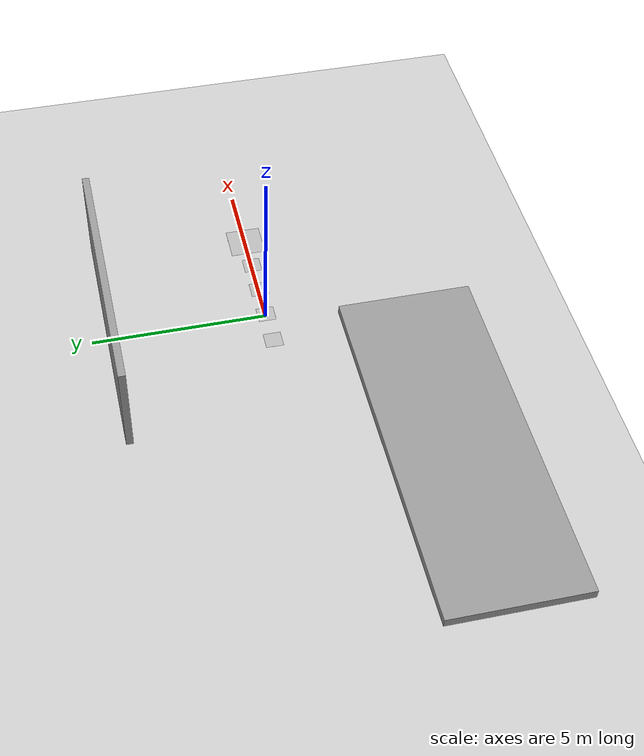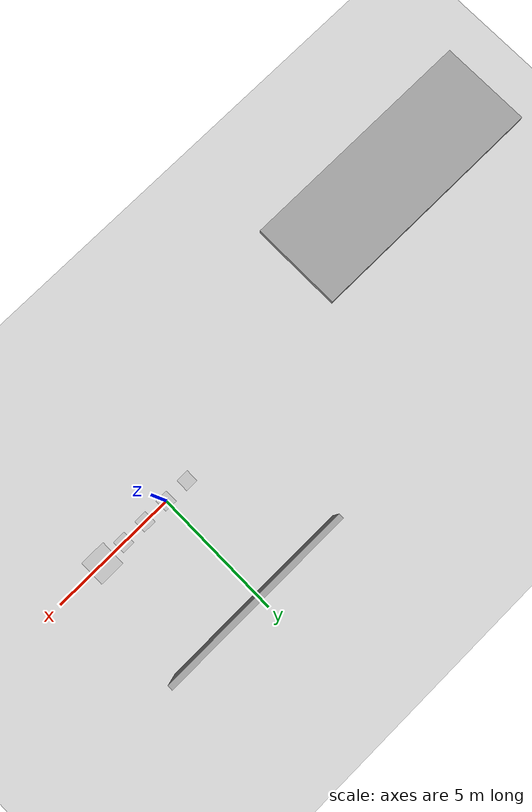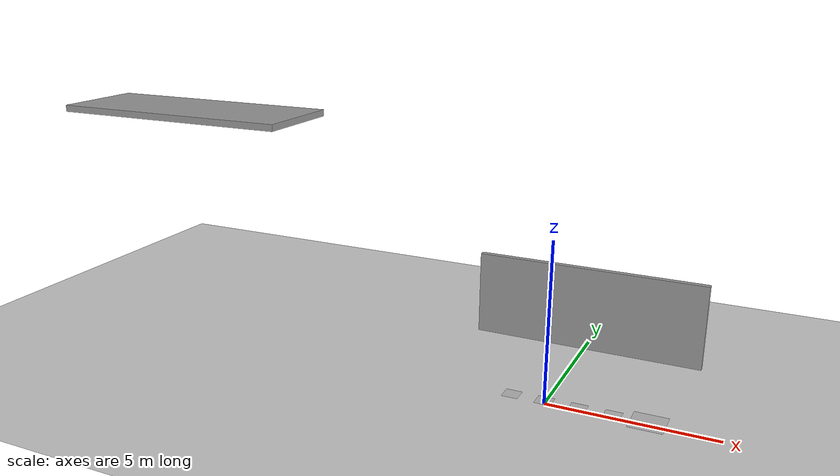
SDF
<sdf version="1.6">
 <world name="default">
  <physics name="default_physics" default="0" type="ode">
   <ode>
    <solver>
     <type>quick</type>
     <iters>100</iters>
     <sor>1</sor>
     <use_dynamic_moi_rescaling>0</use_dynamic_moi_rescaling>
    </solver>
    <constraints>
     <cfm>0</cfm>
     <erp>0.9</erp>
     <contact_max_correcting_vel>0.1</contact_max_correcting_vel>
     <contact_surface_layer>0</contact_surface_layer>
    </constraints>
   </ode>
   <real_time_update_rate>1000</real_time_update_rate>
   <max_step_size>0.001</max_step_size>
   <real_time_factor>1</real_time_factor>
  </physics>
  <scene>
   <sky><clouds><speed>12</speed></clouds></sky>
   <ambient>0.4 0.4 0.4 1</ambient>
   <background>0.25 0.25 0.25 1</background>
   <shadows>0</shadows>
  </scene>
  <model name="ground_plane">
   <static>1</static>
   <link name="link">
    <collision name="collision">
     <geometry><plane><normal>0 0 1</normal><size>1000 1000</size></plane></geometry>
     <surface><friction><ode><mu>1</mu><mu2>1</mu2></ode></friction></surface>
    </collision>
    <visual name="runway">
     <pose>0 0 0.005 0 -0 0</pose>
     <cast_shadows>0</cast_shadows>
     <geometry><plane><normal>0 0 1</normal><size>1000 45</size></plane></geometry>
     <material>
      <script><uri>file://media/materials/scripts/gazebo.material</uri><name>Gazebo/Runway</name></script>
     </material>
    </visual>
    <visual name="grass">
     <pose>0 0 -0.1 0 -0 0</pose>
     <cast_shadows>0</cast_shadows>
     <geometry><plane><normal>0 0 1</normal><size>1000 1000</size></plane></geometry>
     <material>
      <script><uri>file://media/materials/scripts/gazebo.material</uri><name>Gazebo/Grass</name></script>
     </material>
    </visual>
   </link>
  </model>
  <light name="sun" type="directional">
   <pose>0 0 10 0 -0 0</pose>
   <diffuse>0.8 0.8 0.8 1</diffuse>
   <specular>0.2 0.2 0.2 1</specular>
   <attenuation>
    <range>1000</range>
    <constant>0.9</constant>
    <linear>0.01</linear>
    <quadratic>0.001</quadratic>
   </attenuation>
   <direction>-0.5 0.1 -0.9</direction>
  </light>
  <wind><linear_velocity>0 0 0</linear_velocity></wind>
  <plugin name="wind" filename="libWindPlugin.so">
   <horizontal>
    <magnitude>
     <time_for_rise>10</time_for_rise>
     <sin><amplitude_percent>0.05</amplitude_percent><period>60</period></sin>
     <noise type="gaussian"><mean>0</mean><stddev>0.0002</stddev></noise>
    </magnitude>
    <direction>
     <time_for_rise>30</time_for_rise>
     <sin><amplitude>5</amplitude><period>20</period></sin>
     <noise type="gaussian"><mean>0</mean><stddev>0.03</stddev></noise>
    </direction>
   </horizontal>
   <vertical><noise type="gaussian"><mean>0</mean><stddev>0.03</stddev></noise></vertical>
  </plugin>
  <gravity>0 0 -9.8</gravity>
  <magnetic_field>6e-06 2.3e-05 -4.2e-05</magnetic_field>
  <atmosphere type="adiabatic"/>
  <audio><device>default</device></audio>
  <spherical_coordinates>
   <surface_model>EARTH_WGS84</surface_model>
   <latitude_deg>0</latitude_deg>
   <longitude_deg>0</longitude_deg>
   <elevation>0</elevation>
   <heading_deg>0</heading_deg>
  </spherical_coordinates>
  <model name="kare_sekilli_platform">
   <static>1</static>
   <link name="link">
    <collision name="collision">
     <geometry><plane><normal>0 0 1</normal><size>0.5 0.5</size></plane></geometry>
     <surface>
      <contact><collide_bitmask>65535</collide_bitmask></contact>
      <friction><ode><mu>100</mu><mu2>50</mu2></ode></friction>
     </surface>
    </collision>
    <visual name="visual">
     <cast_shadows>0</cast_shadows>
     <geometry><plane><normal>0 0 1</normal><size>0.5 0.5</size></plane></geometry>
     <material>
      <script>
       <uri>model://kare_sekilli_platform/materials/scripts/my_ground_plane.material</uri>
       <uri>model://kare_sekilli_platform/materials/textures/kare.png</uri>
       <name>Kare_Sekilli_Platform/Image</name>
      </script>
     </material>
    </visual>
   </link>
   <pose>0 0 0.1 0 -0 0</pose>
  </model>
  <model name="daire_sekilli_platform">
   <static>1</static>
   <link name="link">
    <collision name="collision">
     <geometry><plane><normal>0 0 1</normal><size>0.5 0.5</size></plane></geometry>
     <surface>
      <contact><collide_bitmask>65535</collide_bitmask></contact>
      <friction><ode><mu>100</mu><mu2>50</mu2></ode></friction>
     </surface>
    </collision>
    <visual name="visual">
     <cast_shadows>0</cast_shadows>
     <geometry><plane><normal>0 0 1</normal><size>0.5 0.5</size></plane></geometry>
     <material>
      <script>
       <uri>model://daire_sekilli_platform/materials/scripts/my_ground_plane.material</uri>
       <uri>model://daire_sekilli_platform/materials/textures/daire.png</uri>
       <name>Daire_Sekilli_Platform/Image</name>
      </script>
     </material>
    </visual>
   </link>
   <pose>-1 0 0.1 0 -0 0</pose>
  </model>
  <model name="ucgen_sekilli_platform">
   <static>1</static>
   <link name="link">
    <collision name="collision">
     <geometry><plane><normal>0 0 1</normal><size>0.5 0.5</size></plane></geometry>
     <surface>
      <contact><collide_bitmask>65535</collide_bitmask></contact>
      <friction><ode><mu>100</mu><mu2>50</mu2></ode></friction>
     </surface>
    </collision>
    <visual name="visual">
     <cast_shadows>0</cast_shadows>
     <geometry><plane><normal>0 0 1</normal><size>0.5 0.5</size></plane></geometry>
     <material>
      <script>
       <uri>model://ucgen_sekilli_platform/materials/scripts/my_ground_plane.material</uri>
       <uri>model://ucgen_sekilli_platform/materials/textures/ucgen.png</uri>
       <name>Ucgen_Sekilli_Platform/Image</name>
      </script>
     </material>
    </visual>
   </link>
   <pose>2 0 0.1 0 -0 0</pose>
  </model>
  <model name="dikdortgen_sekilli_platform">
   <static>1</static>
   <link name="link">
    <collision name="collision">
     <geometry><plane><normal>0 0 1</normal><size>0.5 0.5</size></plane></geometry>
     <surface>
      <contact><collide_bitmask>65535</collide_bitmask></contact>
      <friction><ode><mu>100</mu><mu2>50</mu2></ode></friction>
     </surface>
    </collision>
    <visual name="visual">
     <cast_shadows>0</cast_shadows>
     <geometry><plane><normal>0 0 1</normal><size>0.5 0.5</size></plane></geometry>
     <material>
      <script>
       <uri>model://dikdortgen_sekilli_platform/materials/scripts/my_ground_plane.material</uri>
       <uri>model://dikdortgen_sekilli_platform/materials/textures/dikdortgen.png</uri>
       <name>Dikdortgen_Sekilli_Platform/Image</name>
      </script>
     </material>
    </visual>
   </link>
   <pose>1 0 0.1 0 -0 0</pose>
  </model>
  <model name="gedik_platform">
   <static>1</static>
   <link name="link">
    <collision name="collision">
     <geometry><plane><normal>0 0 1</normal><size>1 1</size></plane></geometry>
     <surface>
      <contact><collide_bitmask>65535</collide_bitmask></contact>
      <friction><ode><mu>100</mu><mu2>50</mu2></ode></friction>
     </surface>
    </collision>
    <visual name="visual">
     <cast_shadows>0</cast_shadows>
     <geometry><plane><normal>0 0 1</normal><size>1 1</size></plane></geometry>
     <material>
      <script>
       <uri>model://gedik_platform/materials/scripts/my_ground_plane.material</uri>
       <uri>model://gedik_platform/materials/textures/gedik-logo.png</uri>
       <name>Gedik_Platform/Image</name>
      </script>
     </material>
    </visual>
   </link>
   <pose>3 0 0.1 0 -0 0</pose>
  </model>
  <model name="grey_wall">
   <static>1</static>
   <link name="link">
    <pose>0 0 1.4 0 -0 0</pose>
    <collision name="collision"><geometry><box><size>7.5 0.2 2.8</size></box></geometry></collision>
    <visual name="visual">
     <cast_shadows>0</cast_shadows>
     <geometry><box><size>7.5 0.2 2.8</size></box></geometry>
     <material>
      <script>
       <uri>model://grey_wall/materials/scripts</uri>
       <uri>model://grey_wall/materials/textures</uri>
       <name>vrc/grey_wall</name>
      </script>
     </material>
    </visual>
   </link>
   <pose>0.020157 4.46054 0 0 -0 0</pose>
  </model>
  <model name="grey_wall_0">
   <static>1</static>
   <link name="link">
    <pose>0 0 1.4 0 -0 0</pose>
    <collision name="collision"><geometry><box><size>7.5 0.2 2.8</size></box></geometry></collision>
    <visual name="visual">
     <cast_shadows>0</cast_shadows>
     <geometry><box><size>7.5 0.2 2.8</size></box></geometry>
     <material>
      <script>
       <uri>model://grey_wall/materials/scripts</uri>
       <uri>model://grey_wall/materials/textures</uri>
       <name>vrc/grey_wall</name>
      </script>
     </material>
    </visual>
   </link>
   <pose>-11 0 8 1.57 -0 0</pose>
  </model>
 </world>
</sdf>
